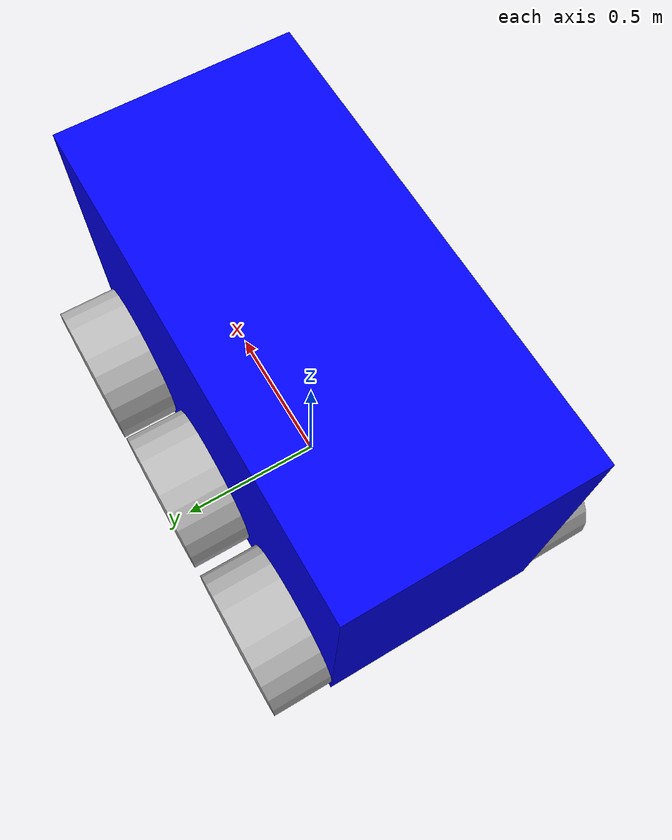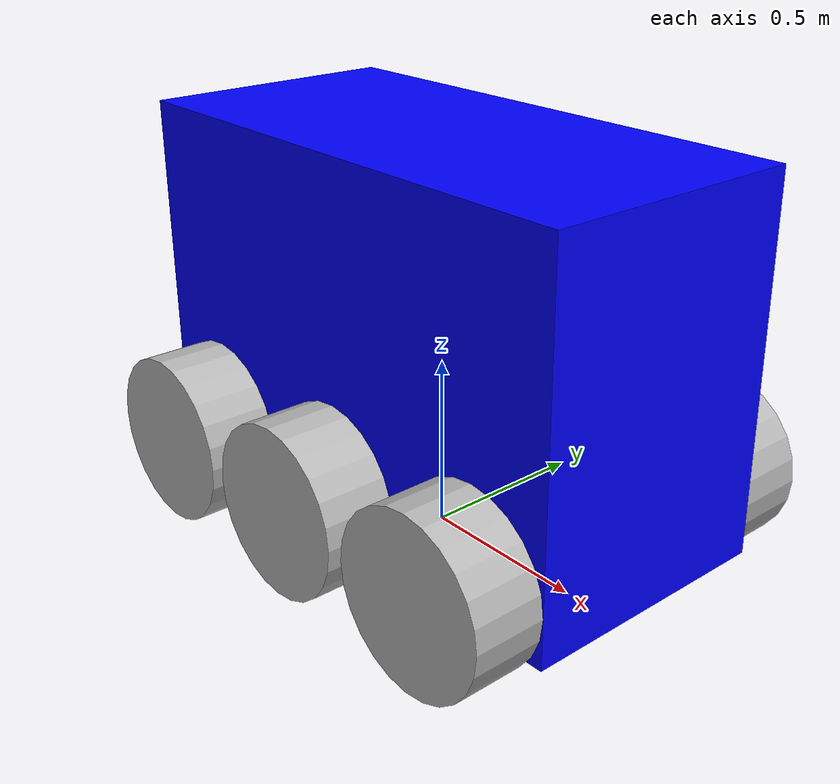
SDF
<?xml version="1.0" ?>
<sdf version="1.10">
  <model name='FLIP' canonical_link='chassis'>
    <pose>0 0 0 0 0 0</pose>

    <link name='chassis'>
      <pose relative_to='__model__'>0 0 0.625 0 0 0</pose>
      <inertial>
        <pose>0 0 0 0 0 0</pose>
        <mass>450.0</mass>
        <inertia>
          <ixx>62.438</ixx>
          <ixy>0</ixy>
          <ixz>0</ixz>
          <iyy>131.438</iyy>
          <iyz>0</iyz>
          <izz>111.188</izz>
        </inertia>
      </inertial>
      <visual name='visual'>
        <geometry><box><size>1.55 0.75 1.05</size></box></geometry>
        <material>
          <ambient>0.0 0.0 1.0 1</ambient>
          <diffuse>0.0 0.0 1.0 1</diffuse>
          <specular>0.0 0.0 1.0 1</specular>
        </material>
      </visual>
      <collision name='collision'>
        <geometry><box><size>1.55 0.75 1.05</size></box></geometry>
      </collision>
      <sensor name="imu_sensor" type="imu">
        <always_on>1</always_on>
        <update_rate>20</update_rate>
        <visualize>true</visualize>
        <topic>imu</topic>
      </sensor>
      <sensor name="gpu_lidar" type="gpu_lidar">
        <pose>0.6 0 0.3 0 0 0</pose>
        <always_on>1</always_on>
        <update_rate>10</update_rate>
        <lidar>
          <scan>
            <horizontal>
              <samples>1440</samples>
              <resolution>1</resolution>
							<min_angle>-3.141593</min_angle>
							<max_angle>3.141593</max_angle>
            </horizontal>
            <vertical>
              <samples>1</samples>
              <resolution>1</resolution>
              <min_angle>0</min_angle>
              <max_angle>0</max_angle>
            </vertical>
          </scan>
          <range>
            <min>0.08</min>
            <max>10.0</max>
            <resolution>0.01</resolution>
          </range>
        </lidar>
        <visualize>true</visualize>
        <topic>lidar_frontier</topic>
      </sensor>
    </link>

    <!-- LIDAR SENSOR -->
    <include>
			<uri>file:///workspace/models/gazebo/plugins/lidar_sensor.sdf</uri>
        <name>3D_LidarSensor</name>
        <pose relative_to='chassis'>0.6 0 0.3 0 0 0</pose>
    </include>

    <joint name="lidar_joint" type="fixed">
      <parent>chassis</parent>
      <child>3D_LidarSensor::lidar_sensor_link</child>
    </joint>

    <!-- LOGICAL AUDIO SENSOR -->
    <include>
			<uri>file:///workspace/models/gazebo/plugins/logical_audio_sensor.sdf</uri>
        <name>car_mic</name>
        <pose relative_to="chassis">0 0 0.6 0 0 0</pose>
    </include>

    <joint name="mic_joint" type="fixed">
      <parent>chassis</parent>
      <child>car_mic::mic_body</child>
    </joint>

    <!-- =============includes + plugin + joint van sensoren=========== -->
    <!-- THERMAL CAMERA -->
    <include>
			<uri>file:///workspace/models/gazebo/plugins/thermal_camera.sdf</uri>
      <name>thermal_cam_instance</name>
      <pose relative_to="chassis">0.3 0 -0.2 0 0 0</pose>
    </include>

    <!-- thermal camera aan chassis -->
    <joint name="thermal_camera_fixed" type="fixed">
      <parent>chassis</parent>
      <child>thermal_cam_instance::thermal_body</child>
    </joint>

    <!-- FRONT CAMERA -->
    <include>
			<uri>file:///workspace/models/gazebo/plugins/front_camera.sdf</uri>
      <name>front_camera</name>
      <pose>0.9 0 1.2 0 0 0</pose>
    </include>

    <joint name="front_cam_joint" type="fixed">
      <parent>chassis</parent>
      <child>front_camera::front_camera_link</child>
    </joint>

    <!-- REAR CAMERA -->
    <include>
			<uri>file:///workspace/models/gazebo/plugins/rear_camera.sdf</uri>
      <name>rear_camera</name>
      <pose>-0.9 0 1.2 0 0 0</pose>
    </include>

    <joint name="rear_cam_joint" type="fixed">
      <parent>chassis</parent>
      <child>rear_camera::rear_camera_link</child>
    </joint>

		<!-- FRONTIER LIDAR -->

    <link name='left_back_wheel'>
      <pose relative_to="chassis">-0.533 0.475 -0.383 -1.5707 0 0</pose>
      <inertial><mass>5</mass><inertia><ixx>0.694</ixx><ixy>0</ixy><ixz>0</ixz><iyy>1.460</iyy><iyz>0</iyz><izz>1.235</izz></inertia></inertial>
      <visual name='visual'><geometry><cylinder><radius>0.242</radius><length>0.2</length></cylinder></geometry></visual>
      <collision name='collision'><geometry><cylinder><radius>0.242</radius><length>0.2</length></cylinder></geometry></collision>
    </link>

    <link name='left_middle_wheel'>
      <pose relative_to="chassis">0 0.475 -0.383 -1.5707 0 0</pose>
      <inertial><mass>5</mass><inertia><ixx>0.694</ixx><ixy>0</ixy><ixz>0</ixz><iyy>1.460</iyy><iyz>0</iyz><izz>1.235</izz></inertia></inertial>
      <visual name='visual'><geometry><cylinder><radius>0.242</radius><length>0.2</length></cylinder></geometry></visual>
      <collision name='collision'><geometry><cylinder><radius>0.242</radius><length>0.2</length></cylinder></geometry></collision>
    </link>

    <link name='right_back_wheel'>
      <pose relative_to="chassis">-0.533 -0.475 -0.383 -1.5707 0 0</pose>
      <inertial><mass>5</mass><inertia><ixx>0.694</ixx><ixy>0</ixy><ixz>0</ixz><iyy>1.460</iyy><iyz>0</iyz><izz>1.235</izz></inertia></inertial>
      <visual name='visual'><geometry><cylinder><radius>0.242</radius><length>0.2</length></cylinder></geometry></visual>
      <collision name='collision'><geometry><cylinder><radius>0.242</radius><length>0.2</length></cylinder></geometry></collision>
    </link>

    <link name='right_middle_wheel'>
      <pose relative_to="chassis">0 -0.475 -0.383 -1.5707 0 0</pose>
      <inertial><mass>5</mass><inertia><ixx>0.694</ixx><ixy>0</ixy><ixz>0</ixz><iyy>1.460</iyy><iyz>0</iyz><izz>1.235</izz></inertia></inertial>
      <visual name='visual'><geometry><cylinder><radius>0.242</radius><length>0.2</length></cylinder></geometry></visual>
      <collision name='collision'><geometry><cylinder><radius>0.242</radius><length>0.2</length></cylinder></geometry></collision>
    </link>

    <link name='left_front_steer_link'>
      <pose relative_to="chassis">0.533 0.475 -0.383 0 0 0</pose>
      <inertial><mass>1.0</mass><inertia><ixx>0.01</ixx><ixy>0</ixy><ixz>0</ixz><iyy>0.01</iyy><iyz>0</iyz><izz>0.01</izz></inertia></inertial>
    </link>

    <link name='right_front_steer_link'>
      <pose relative_to="chassis">0.533 -0.475 -0.383 0 0 0</pose>
      <inertial><mass>1.0</mass><inertia><ixx>0.01</ixx><ixy>0</ixy><ixz>0</ixz><iyy>0.01</iyy><iyz>0</iyz><izz>0.01</izz></inertia></inertial>
    </link>

    <link name='left_front_wheel'>
      <pose relative_to="left_front_steer_link">0 0 0 -1.5707 0 0</pose>
      <inertial><mass>5</mass><inertia><ixx>0.694</ixx><ixy>0</ixy><ixz>0</ixz><iyy>1.460</iyy><iyz>0</iyz><izz>1.235</izz></inertia></inertial>
      <visual name='visual'>
        <geometry><cylinder><radius>0.242</radius><length>0.2</length></cylinder></geometry>
      </visual>
      <collision name='collision'><geometry><cylinder><radius>0.242</radius><length>0.2</length></cylinder></geometry></collision>
    </link>

    <link name='right_front_wheel'>
      <pose relative_to="right_front_steer_link">0 0 0 -1.5707 0 0</pose>
      <inertial><mass>5</mass><inertia><ixx>0.694</ixx><ixy>0</ixy><ixz>0</ixz><iyy>1.460</iyy><iyz>0</iyz><izz>1.235</izz></inertia></inertial>
      <visual name='visual'>
        <geometry><cylinder><radius>0.242</radius><length>0.2</length></cylinder></geometry>
      </visual>
      <collision name='collision'><geometry><cylinder><radius>0.242</radius><length>0.2</length></cylinder></geometry></collision>
    </link>

    <!-- Wheel joints -->
    <joint name="left_front_wheel_joint" type="revolute">
    <parent>chassis</parent>
    <child>left_front_wheel</child>
    <axis><xyz>0 0 1</xyz></axis>
    </joint>

    <joint name="left_middle_wheel_joint" type="revolute">
    <parent>chassis</parent>
    <child>left_middle_wheel</child>
    <axis><xyz>0 0 1</xyz></axis>
    </joint>

    <joint name="left_back_wheel_joint" type="revolute">
    <parent>chassis</parent>
    <child>left_back_wheel</child>
    <axis><xyz>0 0 1</xyz></axis>
    </joint>

    <joint name="right_front_wheel_joint" type="revolute">
    <parent>chassis</parent>
    <child>right_front_wheel</child>
    <axis><xyz>0 0 1</xyz></axis>
    </joint>

    <joint name="right_middle_wheel_joint" type="revolute">
    <parent>chassis</parent>
    <child>right_middle_wheel</child>
    <axis><xyz>0 0 1</xyz></axis>
    </joint>

    <joint name="right_back_wheel_joint" type="revolute">
    <parent>chassis</parent>
    <child>right_back_wheel</child>
    <axis><xyz>0 0 1</xyz></axis>
    </joint>

    <!-- Diff Drive Plugin -->
    <plugin
    filename="gz-sim-diff-drive-system"
    name="gz::sim::systems::DiffDrive">

    <!-- all 6 wheels driven -->
    <left_joint>left_back_wheel_joint</left_joint>
    <left_joint>left_middle_wheel_joint</left_joint>
    <left_joint>left_front_wheel_joint</left_joint>

    <right_joint>right_back_wheel_joint</right_joint>
    <right_joint>right_middle_wheel_joint</right_joint>
    <right_joint>right_front_wheel_joint</right_joint>

    <wheel_separation>0.95</wheel_separation>
    <wheel_radius>0.242</wheel_radius>

    <topic>/model/FLIP/cmd_vel</topic>
    <odom_topic>/model/FLIP/odometry</odom_topic>
    <tf_topic>/model/FLIP/tf</tf_topic>

    <frame_id>odom</frame_id>
    <child_frame_id>chassis</child_frame_id>

    </plugin>

    <!-- Moving Forward-->
    <plugin filename="gz-sim-triggered-publisher-system"
            name="gz::sim::systems::TriggeredPublisher">
        <input type="gz.msgs.Int32" topic="/keyboard/keypress">
            <match field="data">16777235</match>
        </input>
        <output type="gz.msgs.Twist" topic="/model/FLIP/cmd_vel">
            linear: {x: 0.5}, angular: {z: 0.0}
        </output>
    </plugin>

    <!-- Moving Backward-->
    <plugin filename="gz-sim-triggered-publisher-system"
            name="gz::sim::systems::TriggeredPublisher">
        <input type="gz.msgs.Int32" topic="/keyboard/keypress">
            <match field="data">16777237</match>
        </input>
        <output type="gz.msgs.Twist" topic="/model/FLIP/cmd_vel">
            linear: {x: -0.5}, angular: {z: 0.0}
        </output>
    </plugin>

    <!-- Moving left-->
    <plugin filename="gz-sim-triggered-publisher-system"
            name="gz::sim::systems::TriggeredPublisher">
        <input type="gz.msgs.Int32" topic="/keyboard/keypress">
            <match field="data">16777234</match>
        </input>
        <output type="gz.msgs.Twist" topic="/model/FLIP/cmd_vel">
            linear: {x: 0.0}, angular: {z: 1.0}
        </output>
    </plugin>

    <!-- Moving right-->
    <plugin filename="gz-sim-triggered-publisher-system"
            name="gz::sim::systems::TriggeredPublisher">
        <input type="gz.msgs.Int32" topic="/keyboard/keypress">
            <match field="data">16777236</match>
        </input>
        <output type="gz.msgs.Twist" topic="/model/FLIP/cmd_vel">
            linear: {x: 0.0}, angular: {z: -1.0}
        </output>
    </plugin>
  </model>
</sdf>

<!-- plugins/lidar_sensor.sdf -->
<sdf version="1.10">

  <model name="lidar_sensor" canonical_link="lidar_sensor_link">
    <pose>0 0 0 0 0 0</pose>
    <static>false</static>

    <link name='lidar_sensor_link'>
      <inertial>
        <mass>0.1</mass>
        <inertia>
          <ixx>0.000166</ixx><ixy>0</ixy><ixz>0</ixz>
          <iyy>0.000166</iyy><iyz>0</iyz>
          <izz>0.000166</izz>
        </inertia>
      </inertial>
      <visual name='visual'>
        <geometry><cylinder><radius>0.15</radius><length>0.08</length></cylinder></geometry>
        <material>
          <ambient>1 0.0 0.0 1</ambient>
          <diffuse>1.0 0.0 0.0 1</diffuse>
        </material>
      </visual>
      <collision name='collision'>
        <geometry><cylinder><radius>0.05</radius><length>0.08</length></cylinder></geometry>
      </collision>

      <sensor name="gpu_lidar" type="gpu_lidar">
        <pose>0 0 0 0 0 0</pose>
        <always_on>1</always_on>
        <update_rate>20</update_rate>
        <lidar>
          <scan>
            <horizontal>
              <samples>320</samples><resolution>1</resolution>
              <min_angle>-3.14159</min_angle><max_angle>3.14159</max_angle>
            </horizontal>
            <vertical>
              <samples>64</samples><resolution>1</resolution>
              <min_angle>-0.610865</min_angle>
              <max_angle>0.610865</max_angle>
            </vertical>
          </scan>
          <range><min>0.08</min><max>10.0</max><resolution>0.01</resolution></range>
        </lidar>
        <visualize>true</visualize>
        <topic>lidar</topic>
      </sensor>
    </link>
  </model>

</sdf>

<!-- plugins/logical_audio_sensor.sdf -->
<sdf version="1.10">
  <model name="logical_audio_mic">
    <link name="mic_body">
      <visual name="mic_visual">
        <geometry><sphere><radius>0.05</radius></sphere></geometry>
        <material><ambient>0.5 0.5 0.5 1</ambient><diffuse>0.5 0.5 0.5 1</diffuse></material>
      </visual>
      </link>

    <plugin filename="gz-sim-logicalaudiosensorplugin-system"
            name="gz::sim::systems::LogicalAudioSensorPlugin">
      <microphone>
        <id>1</id>
        <pose>0 0 0 0 0 0</pose>
        <volume_threshold>0.1</volume_threshold>
      </microphone>
    </plugin>
  </model>
</sdf>

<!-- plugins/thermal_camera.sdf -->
<sdf version="1.10">
  <model name="thermal_camera_model">
    <link name="thermal_body">
      <pose>0 0 0 0 0 0</pose>

      <visual name="thermal_visual">
        <geometry><box><size>0.1 0.1 0.1</size></box></geometry>
        <material>
          <ambient>1 0 0 1</ambient>
          <diffuse>1 0 0 1</diffuse>
          <specular>0.2 0.2 0.2 1</specular>
        </material>
      </visual>

      <collision name="thermal_collision">
        <geometry><box><size>0.1 0.1 0.1</size></box></geometry>
      </collision>

      <inertial>
        <mass>0.5</mass>
        <inertia>
          <ixx>0.001</ixx><iyy>0.001</iyy><izz>0.001</izz>
          <ixy>0</ixy><ixz>0</ixz><iyz>0</iyz>
        </inertia>
      </inertial>

      <sensor name="thermal_camera" type="thermal">
        <pose>0 0 0 0 0 0</pose>
        <always_on>true</always_on>
        <update_rate>30</update_rate>
        <visualize>true</visualize>
        <topic>/FLIP/thermal_camera</topic>
        <camera>
          <horizontal_fov>1.047</horizontal_fov>
          <image>
            <width>320</width>
            <height>240</height>
            <format>L16</format>
          </image>
          <clip>
            <near>0.1</near>
            <far>100</far>
          </clip>
        </camera>
        <plugin
          filename="gz-sim-thermal-sensor-system"
          name="gz::sim::systems::ThermalSensor">
        </plugin>
      </sensor>
    </link>
  </model>
</sdf>

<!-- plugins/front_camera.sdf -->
<sdf version="1.10">

  <model name="front_camera" canonical_link="front_camera_link">
    <pose>0 0 0 0 0 0</pose>
    <static>false</static>

    <link name="front_camera_link">

      <inertial>
        <mass>0.5</mass>
        <inertia>
          <ixx>0.001</ixx>
          <iyy>0.001</iyy>
          <izz>0.001</izz>
        </inertia>
      </inertial>

      <sensor name="camera" type="camera">
        <pose>0 0 0 0 0 0</pose>

        <always_on>true</always_on>
        <update_rate>30</update_rate>

        <camera>
          <horizontal_fov>1.047</horizontal_fov>
          <image>
            <width>640</width>
            <height>480</height>
            <format>R8G8B8</format>
          </image>
          <clip>
            <near>0.1</near>
            <far>100</far>
          </clip>
        </camera>

        <topic>/front/image</topic>
      </sensor>

    </link>
  </model>

</sdf>

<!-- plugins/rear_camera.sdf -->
<sdf version="1.10">

  <model name="rear_camera" canonical_link="rear_camera_link">
    <pose>0 0 0 0 0 0</pose>
    <static>false</static>

    <link name="rear_camera_link">

      <inertial>
        <mass>0.5</mass>
        <inertia>
          <ixx>0.001</ixx>
          <iyy>0.001</iyy>
          <izz>0.001</izz>
        </inertia>
      </inertial>

      <sensor name="camera" type="camera">
        <pose>0 0 0 0 0 3.14159</pose>

        <always_on>true</always_on>
        <update_rate>30</update_rate>

        <camera>
          <horizontal_fov>1.047</horizontal_fov>
          <image>
            <width>640</width>
            <height>480</height>
            <format>R8G8B8</format>
          </image>
          <clip>
            <near>0.1</near>
            <far>100</far>
          </clip>
        </camera>

        <topic>/rear/image</topic>
      </sensor>

    </link>
  </model>

</sdf>
